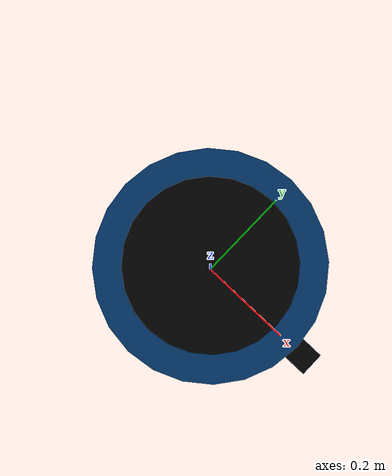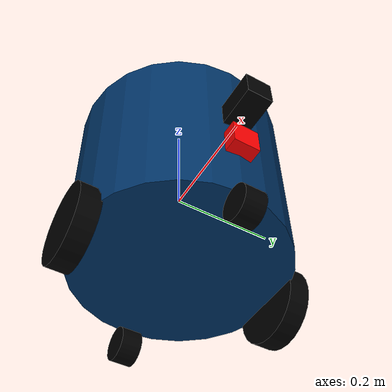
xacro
<?xml version="1.0"?>
<robot xmlns:xacro="http://www.ros.org/wiki/xacro" name="tobot">

  <!-- Constant for the xacro model -->

  <xacro:property name="GROUND_CLEARANCE" value="0" />
  <xacro:property name="width" value="0.20" />
  <xacro:property name="bodylen" value="0.355" />
  <xacro:property name="wheel_l" value="0.039" />
  <xacro:property name="wheel_rad" value="0.0750" />
  <xacro:property name="plat_rad" value="0.150" />
  <xacro:property name="plat_len" value="0.005" />
  <xacro:property name="HIGH_PLATFORM" value="0.15" />
  <xacro:property name="posz_laser" value="0.12" />
  <xacro:property name="posx_laser" value="0.15" />
  <xacro:property name="posz_camera" value="0.2" />
  <xacro:property name="fwheel_rad" value="0.0325" />
  <xacro:property name="PI" value="3.1415" />
  <xacro:property name="prefix" value="" />

  <material name="black">
    <color rgba="0 0 0 1"/>
  </material>

  <material name="red">
    <color rgba="1 0 0 1"/>
  </material>

  <!-- Actual frame and materials -->

  <link name="${prefix}base_link">
    <visual>
      <geometry>
         <cylinder length="${bodylen}" radius="${width}"/>
      </geometry>
      <origin rpy="0 0 0" xyz="0 0 ${GROUND_CLEARANCE}"/>
      <material name="blue">
        <color rgba="0 0.2 0.4 1"/>
      </material>
    </visual>
    <collision>
      <geometry>
         <cylinder length="${bodylen}" radius="${width}"/>
      </geometry>
      <origin rpy="0 0 0" xyz="0 0 ${GROUND_CLEARANCE+bodylen}"/>
    </collision>
  </link>

  <link name="${prefix}lwheel">
    <visual>
      <geometry>
        <cylinder length="${wheel_l}" radius="${wheel_rad}"/>
      </geometry>
      <origin rpy="-1.57075 0 0" xyz="0 0 0"/>
      <material name="black"/>
    </visual>
    <collsion>
      <geometry>
        <cylinder length="${wheel_l}" radius="${wheel_rad}"/>
      </geometry>
      <origin rpy="-1.57075 0 0" xyz="0 0 0"/>
    </collsion>
  </link>

  <joint name="${prefix}base_to_lwheel" type="continuous">
    <parent link="${prefix}base_link"/>
    <child link="${prefix}lwheel"/>
    <axis xyz="0 1 0"/>
    <origin xyz="0 ${width} ${GROUND_CLEARANCE-(bodylen/2)}" rpy="0 0 0"/>
  </joint>

  <link name="${prefix}rwheel">
    <visual>
      <geometry>
        <cylinder length="${wheel_l}" radius="${wheel_rad}"/>
      </geometry>
      <origin rpy="-1.57075 0 0" xyz="0 0 0"/>
      <material name="black"/>
    </visual>
    <collsion>
      <geometry>
        <cylinder length="${wheel_l}" radius="${wheel_rad}"/>
      </geometry>
      <origin rpy="-1.57075 0 0" xyz="0 0 0"/>
    </collsion>
  </link>

  <joint name="${prefix}base_to_rwheel" type="continuous">
    <parent link="${prefix}base_link"/>
    <child link="${prefix}rwheel"/>
    <axis xyz="0 1 0"/>
    <origin xyz="0 ${-width} ${GROUND_CLEARANCE-(bodylen/2)}" rpy="0 0 0"/>
  </joint>

  <!--LASER-->
  <link name="${prefix}laser">
    <visual>
      <geometry>
        <box size="0.05 .05 .05"/>
      </geometry>
      <origin rpy="0 0 0" xyz="0 0 0"/>
      <material name="red"/>
    </visual>
  </link>

  <joint name="${prefix}base_laser" type="fixed">
    <parent link="${prefix}base_link"/>
    <child link="${prefix}laser"/>
    <origin xyz="${width} 0 ${GROUND_CLEARANCE-(bodylen/2)+posz_laser} " rpy="0 0 0"/>
  </joint>

  <!--FRONT WHEEL-->
  <link name="${prefix}fwheel">
    <visual>
      <geometry>
        <cylinder length="${wheel_l}" radius="${fwheel_rad}"/>
      </geometry>
      <origin rpy="-1.57075 0 0" xyz="0 0 0"/>
      <material name="black"/>
    </visual>
    <collsion>
      <geometry>
        <cylinder length="${wheel_l}" radius="${fwheel_rad}"/>
      </geometry>
      <origin rpy="-1.57075 0 0" xyz="0 0 0"/>
    </collsion>
  </link>

  <joint name="${prefix}base_to_fwheel" type="continuous">
    <parent link="${prefix}base_link"/>
    <child link="${prefix}fwheel"/>
    <axis xyz="0 1 0"/>
    <origin xyz="${width} 0 ${GROUND_CLEARANCE-(bodylen/2)-(fwheel_rad)}" rpy="0 0 0"/>
  </joint>

  <!--BACK WHEEL-->
  <link name="${prefix}bwheel">
    <visual>
      <geometry>
        <cylinder length="${wheel_l}" radius="${fwheel_rad}"/>
      </geometry>
      <origin rpy="-1.57075 0 0" xyz="0 0 0"/>
      <material name="black"/>
    </visual>
    <collsion>
      <geometry>
        <cylinder length="${wheel_l}" radius="${fwheel_rad}"/>
      </geometry>
      <origin rpy="-1.57075 0 0" xyz="0 0 0"/>
    </collsion>
  </link>

  <joint name="${prefix}base_to_bwheel" type="continuous">
    <parent link="${prefix}base_link"/>
    <child link="${prefix}bwheel"/>
    <axis xyz="0 1 0"/>
    <origin xyz="${-width} 0 ${GROUND_CLEARANCE-(bodylen/2)-(fwheel_rad)}" rpy="0 0 0"/>
  </joint>

  <!-- PLatform qui se leve-->
  <link name="${prefix}platform">
    <visual>
      <geometry>
         <cylinder length="${plat_len}" radius="${plat_rad}"/>
      </geometry>
      <origin rpy="0 0 0" xyz="0 0 ${plat_len/2}"/>
      <material name="black"/>
    </visual>
  </link>

  <joint name="${prefix}base_platform" type="prismatic">
    <parent link="${prefix}base_link"/>
    <child link="${prefix}platform"/>
    <axis xyz="0 0 1"/>
    <limit effort="1000.0" lower="0" upper="${HIGH_PLATFORM}" velocity="0.5"/>
    <origin rpy="0 0 0" xyz="0 0 ${(bodylen/2)+GROUND_CLEARANCE}"/>
  </joint>

  <!--CAMERA-->
  <link name="${prefix}camera_link">
    <visual>
      <geometry>
        <box size="0.15 .05 .05"/>
      </geometry>
      <origin rpy="0 0 0" xyz="0 0 0"/>
      <material name="black"/>
    </visual>
  </link>

  <joint name="${prefix}camera_link" type="fixed">
    <parent link="${prefix}base_link"/>
    <child link="${prefix}camera_link"/>
    <origin xyz="${width} 0 ${GROUND_CLEARANCE-(bodylen/2)+posz_camera} " rpy="0 0 0"/>
  </joint>

</robot>
